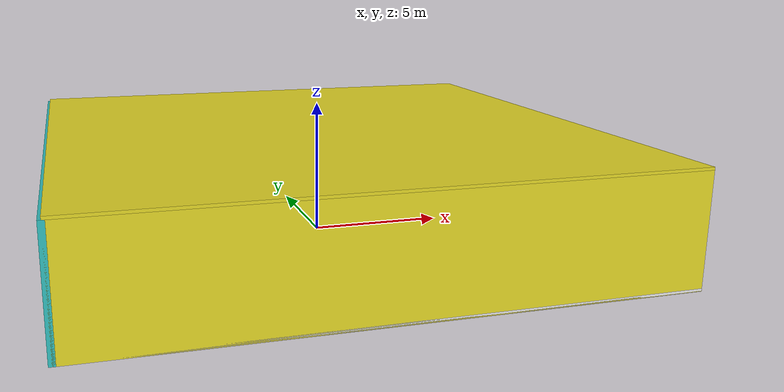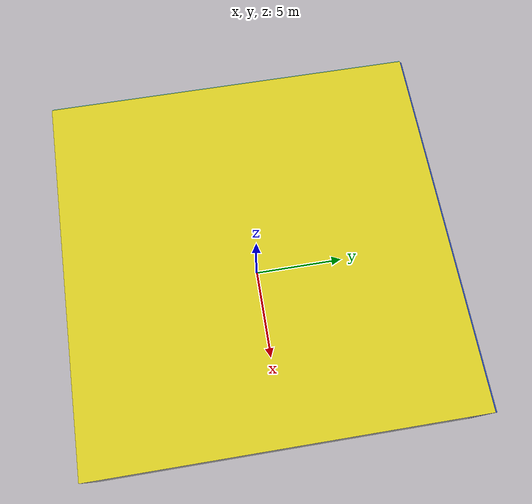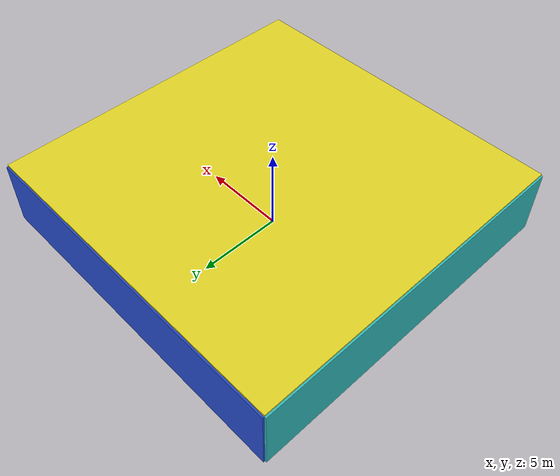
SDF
<sdf version="1.4">
 <world name="default">
  <physics type="ode">
   <max_step_size>0.001</max_step_size>
   <real_time_factor>1</real_time_factor>
   <real_time_update_rate>1000</real_time_update_rate>
   <gravity>0 0 -9.8</gravity>
  </physics>
  <scene><ambient>0.4 0.4 0.4 1</ambient><background>0.7 0.7 0.7 1</background><shadows>1</shadows></scene>
  <model name="Surrounding">
   <static>1</static>
   <link name="Ceiling">
    <collision name="Ceiling_Collision"><geometry><box><size>20 20 0.1</size></box></geometry></collision>
    <visual name="Ceiling_Visual">
     <geometry><box><size>20 20 0.1</size></box></geometry>
     <material>
      <script><uri>file://media/materials/scripts/gazebo.material</uri><name>Gazebo/YellowGlow</name></script>
     </material>
    </visual>
    <pose>0 0 4.05 0 0 0</pose>
   </link>
   <link name="Wall_South">
    <collision name="Wall_South_Collision">
     <geometry><box><size>20 0 4</size></box></geometry>
     <pose>0 0 2 0 -0 0</pose>
    </collision>
    <visual name="Wall_South_Visual">
     <pose>0 0 2 0 -0 0</pose>
     <geometry><box><size>20 0 4</size></box></geometry>
     <material>
      <script><uri>file://media/materials/scripts/gazebo.material</uri><name>Gazebo/YellowGlow</name></script>
     </material>
    </visual>
    <velocity_decay><linear>0</linear><angular>0</angular></velocity_decay>
    <pose>0 -10 0 0 -0 0</pose>
   </link>
   <link name="Wall_East">
    <collision name="Wall_21_Collision">
     <geometry><box><size>20 0 4</size></box></geometry>
     <pose>0 0 2 0 -0 0</pose>
    </collision>
    <visual name="Wall_21_Visual">
     <pose>0 0 2 0 -0 0</pose>
     <geometry><box><size>20 0 4</size></box></geometry>
     <material>
      <script><uri>file://media/materials/scripts/gazebo.material</uri><name>Gazebo/JointAnchor</name></script>
     </material>
    </visual>
    <velocity_decay><linear>0</linear><angular>0</angular></velocity_decay>
    <pose>10 0 0 0 -0 1.5708</pose>
   </link>
   <link name="Wall_North">
    <collision name="Wall_22_Collision">
     <geometry><box><size>20 0.2 4</size></box></geometry>
     <pose>0 0 2 0 -0 0</pose>
    </collision>
    <visual name="Wall_22_Visual">
     <pose>0 0 2 0 -0 0</pose>
     <geometry><box><size>20 0.2 4</size></box></geometry>
     <material>
      <script><uri>file://media/materials/scripts/gazebo.material</uri><name>Gazebo/Blue</name></script>
     </material>
    </visual>
    <velocity_decay><linear>0</linear><angular>0</angular></velocity_decay>
    <pose>0 10 0 0 -0 0</pose>
   </link>
   <link name="Wall_West">
    <collision name="Wall_23_Collision">
     <geometry><box><size>20 0.2 4</size></box></geometry>
     <pose>0 0 2 0 -0 0</pose>
    </collision>
    <visual name="Wall_23_Visual">
     <pose>0 0 2 0 -0 0</pose>
     <geometry><box><size>20 0.2 4</size></box></geometry>
     <material>
      <script>
       <uri>file://media/materials/scripts/gazebo.material</uri>
       <name>Gazebo/TurquoiseGlowOutline</name>
      </script>
     </material>
    </visual>
    <velocity_decay><linear>0</linear><angular>0</angular></velocity_decay>
    <pose>-10 0 0 0 0 -1.5708</pose>
   </link>
   <link name="Ground_link">
    <collision name="collision">
     <pose>0 0 .05 0 -0 0</pose>
     <geometry><box><size>20 20 0.1</size></box></geometry>
    </collision>
    <visual name="visual">
     <pose>0 0 .05 0 -0 0</pose>
     <geometry><box><size>20 20 0.1</size></box></geometry>
     <material>
      <script><uri>file://media/materials/scripts/gazebo.material</uri><name>Gazebo/White</name></script>
     </material>
    </visual>
   </link>
   <static>1</static>
  </model>
  <spherical_coordinates>
   <surface_model>EARTH_WGS84</surface_model>
   <latitude_deg>0</latitude_deg>
   <longitude_deg>0</longitude_deg>
   <elevation>0</elevation>
   <heading_deg>0</heading_deg>
  </spherical_coordinates>
  <light name="lightball_0" type="diffuse">
   <diffuse>0.8 0.8 0.8 1</diffuse>
   <specular>0.2 0.2 0.2 1</specular>
   <attenuation>
    <range>100</range>
    <constant>0.7</constant>
    <linear>0.01</linear>
    <quadratic>0.001</quadratic>
   </attenuation>
   <direction>-0.5 0.1 -0.9</direction>
   <pose>-0.650345712358 9.76832802093 1.06871715472 0 0 0</pose>
  </light>
  <light name="lightball_1" type="diffuse">
   <diffuse>0.8 0.8 0.8 1</diffuse>
   <specular>0.2 0.2 0.2 1</specular>
   <attenuation>
    <range>100</range>
    <constant>0.7</constant>
    <linear>0.01</linear>
    <quadratic>0.001</quadratic>
   </attenuation>
   <direction>-0.5 0.1 -0.9</direction>
   <pose>-4.85477344161 -7.23279579717 3.25358901158 0 0 0</pose>
  </light>
  <light name="lightball_2" type="diffuse">
   <diffuse>0.8 0.8 0.8 1</diffuse>
   <specular>0.2 0.2 0.2 1</specular>
   <attenuation>
    <range>100</range>
    <constant>0.7</constant>
    <linear>0.01</linear>
    <quadratic>0.001</quadratic>
   </attenuation>
   <direction>-0.5 0.1 -0.9</direction>
   <pose>8.52707608361 -9.90380371912 2.87819130579 0 0 0</pose>
  </light>
  <light name="lightball_3" type="diffuse">
   <diffuse>0.8 0.8 0.8 1</diffuse>
   <specular>0.2 0.2 0.2 1</specular>
   <attenuation>
    <range>100</range>
    <constant>0.7</constant>
    <linear>0.01</linear>
    <quadratic>0.001</quadratic>
   </attenuation>
   <direction>-0.5 0.1 -0.9</direction>
   <pose>-3.05344688857 1.11992416516 1.84616540225 0 0 0</pose>
  </light>
  <include><uri>model://cabinet</uri><pose>-5.09323161564 2.04394761797 0 0 0 0.909028012969</pose></include>
  <include><uri>model://cabinet</uri><pose>2.17051074368 -4.41403686666 0 0 0 2.47099143577</pose></include>
  <include><uri>model://table</uri><pose>4.08036882066 1.79163422613 0 0 0 0.351313141239</pose></include>
 </world>
</sdf>

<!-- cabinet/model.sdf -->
<sdf version="1.5">
  <model name="cabinet">
    <static>true</static>
    <link name="cabinet_bottom_plate">
      <inertial>
        <pose>0 0 -1 0 0 0</pose>
        <inertia>
          <ixx>2.050000</ixx>
          <ixy>0</ixy>
          <ixz>0</ixz>
          <iyy>2.050000</iyy>
          <iyz>0</iyz>
          <izz>2.050000</izz>
        </inertia>
        <mass>25.000000</mass>
      </inertial>
      <collision name="cabinet_bottom_plate_geom">
        <pose>0 0 0.010000 0 0 0</pose>
        <geometry>
          <box>
            <size>0.450000 0.450000 0.020000</size>
          </box>
        </geometry>
      </collision>
      <visual name="cabinet_bottom_plate_geom_visual">
        <pose>0 0 0.010000 0 0 0</pose>
        <geometry>
          <box>
            <size>0.450000 0.450000 0.020000</size>
          </box>
        </geometry>
        <material>
          <script>
            <uri>model://media/materials/scripts/gazebo.material</uri>
            <name>Gazebo/Wood</name>
          </script>
        </material>
      </visual>
      <collision name="cabinet_bottom_plate_geom_cabinet_back_plate">
        <pose>0.235000 0 0.510000 0 0 0</pose>
        <geometry>
          <box>
            <size>0.020000 0.450000 1.020000</size>
          </box>
        </geometry>
      </collision>
      <visual name="cabinet_bottom_plate_geom_cabinet_back_plate_visual">
        <pose>0.235000 0 0.510000 0 0 0</pose>
        <geometry>
          <box>
            <size>0.020000 0.450000 1.020000</size>
          </box>
        </geometry>
        <material>
          <script>
            <uri>model://media/materials/scripts/gazebo.material</uri>
            <name>Gazebo/Wood</name>
          </script>
        </material>
      </visual>
      <collision name="cabinet_bottom_plate_geom_cabinet_left_plate">
        <pose>0 0.235000 0.510000 0 0 0</pose>
        <geometry>
          <box>
            <size>0.450000 0.020000 1.020000</size>
          </box>
        </geometry>
      </collision>
      <visual name="cabinet_bottom_plate_geom_cabinet_left_plate_visual">
        <pose>0 0.235000 0.510000 0 0 0</pose>
        <geometry>
          <box>
            <size>0.450000 0.020000 1.020000</size>
          </box>
        </geometry>
        <material>
          <script>
            <uri>model://media/materials/scripts/gazebo.material</uri>
            <name>Gazebo/Wood</name>
          </script>
        </material>
      </visual>
      <collision name="cabinet_bottom_plate_geom_cabinet_middle_plate">
        <pose>0 0 0.510000 0 0 0</pose>
        <geometry>
          <box>
            <size>0.450000 0.450000 0.020000</size>
          </box>
        </geometry>
      </collision>
      <visual name="cabinet_bottom_plate_geom_cabinet_middle_plate_visual">
        <pose>0 0 0.510000 0 0 0</pose>
        <geometry>
          <box>
            <size>0.450000 0.450000 0.020000</size>
          </box>
        </geometry>
        <material>
          <script>
            <uri>model://media/materials/scripts/gazebo.material</uri>
            <name>Gazebo/Wood</name>
          </script>
        </material>
      </visual>
      <collision name="cabinet_bottom_plate_geom_cabinet_right_plate">
        <pose>0 -0.235000 0.510000 0 0 0</pose>
        <geometry>
          <box>
            <size>0.450000 0.020000 1.020000</size>
          </box>
        </geometry>
      </collision>
      <visual name="cabinet_bottom_plate_geom_cabinet_right_plate_visual">
        <pose>0 -0.235000 0.510000 0 0 0</pose>
        <geometry>
          <box>
            <size>0.450000 0.020000 1.020000</size>
          </box>
        </geometry>
        <material>
          <script>
            <uri>model://media/materials/scripts/gazebo.material</uri>
            <name>Gazebo/Wood</name>
          </script>
        </material>
      </visual>
      <collision name="cabinet_bottom_plate_geom_cabinet_top_plate">
        <pose>0 0 1.010000 0 0 0</pose>
        <geometry>
          <box>
            <size>0.450000 0.450000 0.020000</size>
          </box>
        </geometry>
      </collision>
      <visual name="cabinet_bottom_plate_geom_cabinet_top_plate_visual">
        <pose>0 0 1.010000 0 0 0</pose>
        <geometry>
          <box>
            <size>0.450000 0.450000 0.020000</size>
          </box>
        </geometry>
        <material>
          <script>
            <uri>model://media/materials/scripts/gazebo.material</uri>
            <name>Gazebo/Wood</name>
          </script>
        </material>
      </visual>
    </link>
  </model>
</sdf>

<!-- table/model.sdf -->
<sdf version="1.5">
  <model name="table">
    <static>true</static>
    <link name="link">
      <collision name="surface">
        <pose>0 0 1.0 0 0 0</pose>
        <geometry>
          <box>
            <size>1.5 0.8 0.03</size>
          </box>
        </geometry>
        <surface>
          <friction>
            <ode>
              <mu>0.6</mu>
              <mu2>0.6</mu2>
            </ode>
          </friction>
        </surface>
      </collision>
      <visual name="visual1">
        <pose>0 0 1.0 0 0 0</pose>
        <geometry>
          <box>
            <size>1.5 0.8 0.03</size>
          </box>
        </geometry>
        <material>
          <script>
            <uri>model://media/materials/scripts/gazebo.material</uri>
            <name>Gazebo/Wood</name>
          </script>
        </material>
      </visual>
      <collision name="front_left_leg">
        <pose>0.68 0.38 0.5 0 0 0</pose>
        <geometry>
          <cylinder>
            <radius>0.02</radius>
            <length>1.0</length>
          </cylinder>
        </geometry>
      </collision>
      <visual name="front_left_leg">
        <pose>0.68 0.38 0.5 0 0 0</pose>
        <geometry>
          <cylinder>
            <radius>0.02</radius>
            <length>1.0</length>
          </cylinder>
        </geometry>
        <material>
          <script>
            <uri>model://media/materials/scripts/gazebo.material</uri>
            <name>Gazebo/Grey</name>
          </script>
        </material>
      </visual>
      <collision name="front_right_leg">
        <pose>0.68 -0.38 0.5 0 0 0</pose>
        <geometry>
          <cylinder>
            <radius>0.02</radius>
            <length>1.0</length>
          </cylinder>
        </geometry>
      </collision>
      <visual name="front_right_leg">
        <pose>0.68 -0.38 0.5 0 0 0</pose>
        <geometry>
          <cylinder>
            <radius>0.02</radius>
            <length>1.0</length>
          </cylinder>
        </geometry>
        <material>
          <script>
            <uri>model://media/materials/scripts/gazebo.material</uri>
            <name>Gazebo/Grey</name>
          </script>
        </material>
      </visual>
      <collision name="back_right_leg">
        <pose>-0.68 -0.38 0.5 0 0 0</pose>
        <geometry>
          <cylinder>
            <radius>0.02</radius>
            <length>1.0</length>
          </cylinder>
        </geometry>
      </collision>
      <visual name="back_right_leg">
        <pose>-0.68 -0.38 0.5 0 0 0</pose>
        <geometry>
          <cylinder>
            <radius>0.02</radius>
            <length>1.0</length>
          </cylinder>
        </geometry>
        <material>
          <script>
            <uri>model://media/materials/scripts/gazebo.material</uri>
            <name>Gazebo/Grey</name>
          </script>
        </material>
      </visual>
      <collision name="back_left_leg">
        <pose>-0.68 0.38 0.5 0 0 0</pose>
        <geometry>
          <cylinder>
            <radius>0.02</radius>
            <length>1.0</length>
          </cylinder>
        </geometry>
      </collision>
      <visual name="back_left_leg">
        <pose>-0.68 0.38 0.5 0 0 0</pose>
        <geometry>
          <cylinder>
            <radius>0.02</radius>
            <length>1.0</length>
          </cylinder>
        </geometry>
        <material>
          <script>
            <uri>model://media/materials/scripts/gazebo.material</uri>
            <name>Gazebo/Grey</name>
          </script>
        </material>
      </visual>
    </link>
  </model>
</sdf>
